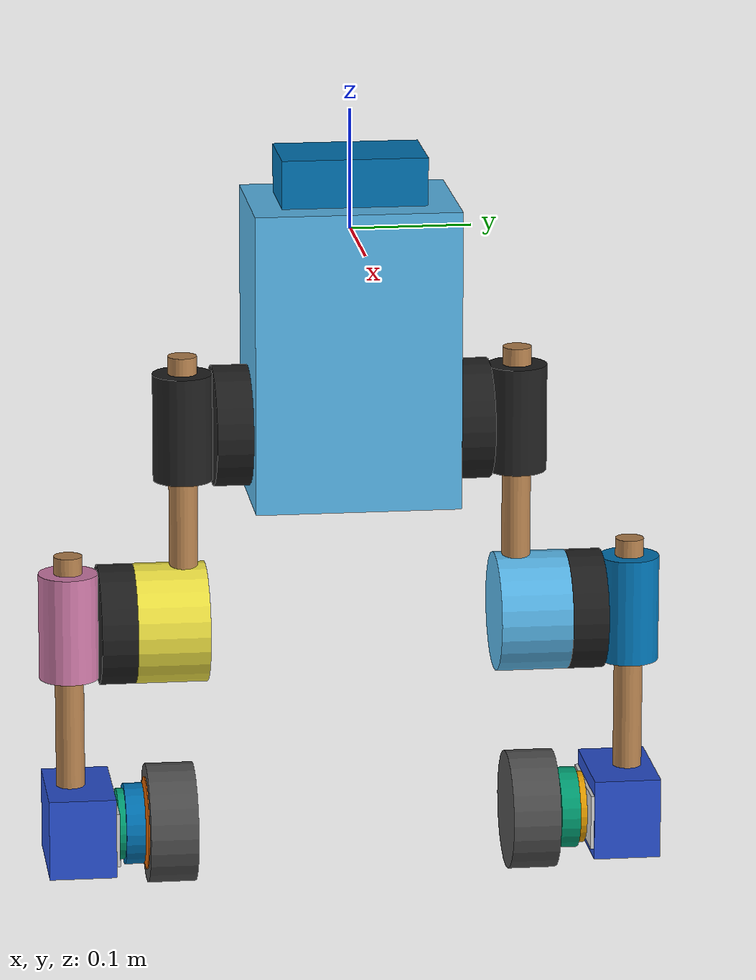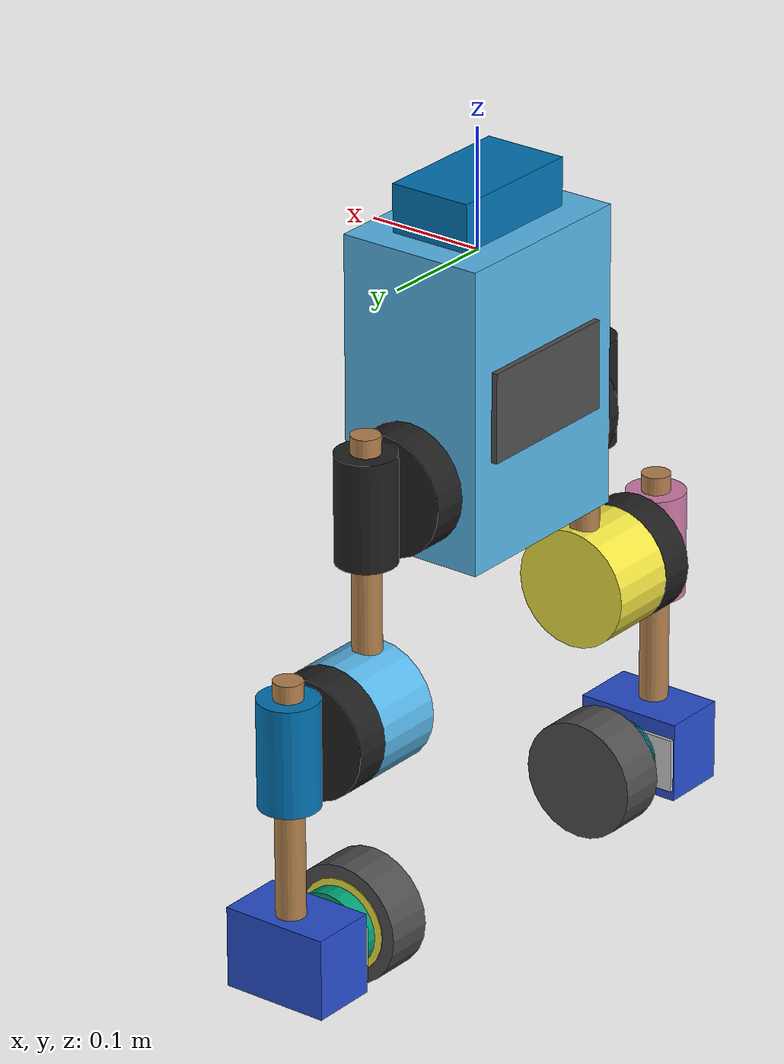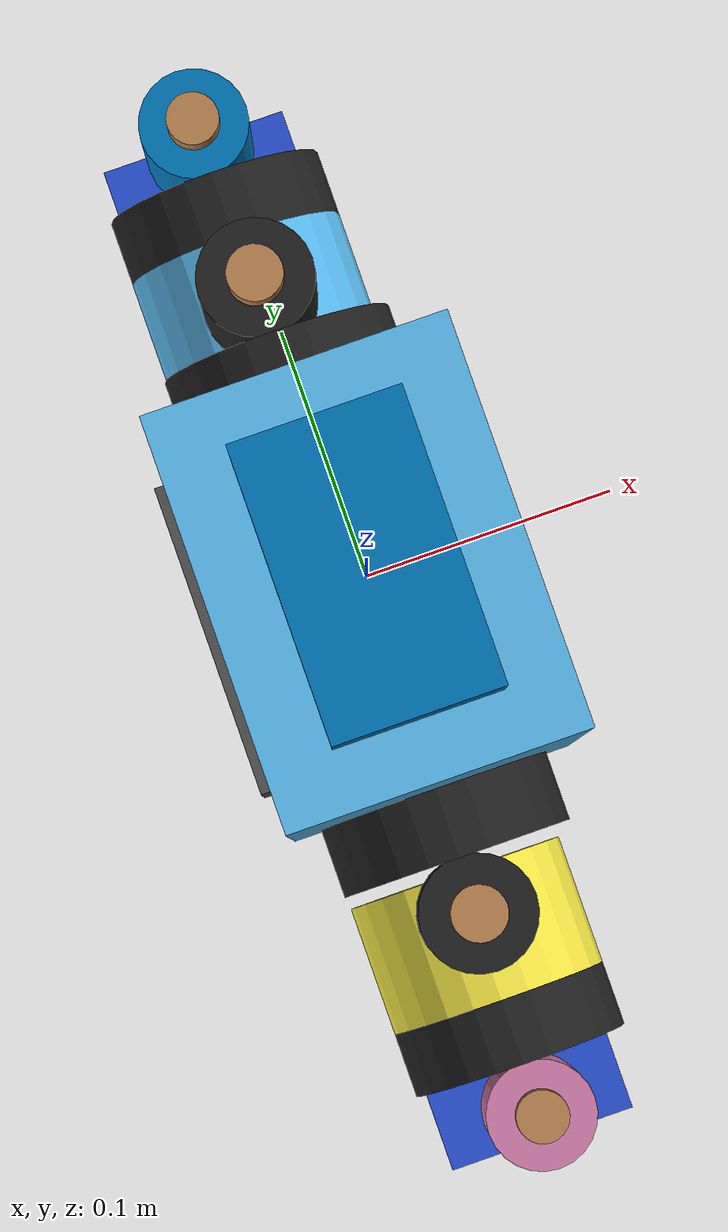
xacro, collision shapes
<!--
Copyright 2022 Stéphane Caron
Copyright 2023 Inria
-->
<?xml version="1.0" encoding="utf-8" ?>
<robot name="upkie" xmlns:xacro="http://ros.org/wiki/xacro">
    <xacro:include filename="xacro/utils/box_inertia.xacro" />
    <xacro:include filename="xacro/utils/cylinder_inertia.xacro" />
    <xacro:include filename="xacro/utils/materials.xacro" />
    <xacro:include filename="xacro/utils/virtual_link.xacro" />

    <xacro:include filename="xacro/left_leg.xacro" />
    <xacro:include filename="xacro/right_leg.xacro" />
    <xacro:include filename="xacro/torso.xacro" />

    <xacro:torso with_camera="false" with_handle="true" />
    <xacro:left_leg />
    <xacro:right_leg />
</robot>

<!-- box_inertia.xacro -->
<!-- SPDX-License-Identifier: Apache-2.0 -->
<robot name="utils" xmlns:xacro="http://ros.org/wiki/xacro">
    <xacro:macro name="box_inertia" params="len_x len_y len_z mass">
        <inertial>
            <mass value="${mass}"/>
            <inertia
                ixx="${mass * (len_y ** 2 + len_z ** 2) / 12}"
                ixy="0"
                ixz="0"
                iyy="${mass * (len_x ** 2 + len_z ** 2) / 12}"
                iyz="0"
                izz="${mass * (len_x ** 2 + len_y ** 2) / 12}"
                />
        </inertial>
    </xacro:macro>
</robot>

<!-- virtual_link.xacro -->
<!-- SPDX-License-Identifier: Apache-2.0 -->
<robot name="utils" xmlns:xacro="http://ros.org/wiki/xacro">
    <xacro:macro name="virtual_link" params="name">
        <link name="${name}">
            <!-- virtual link: https://github.com/upkie/upkie_description/wiki/Model-conventions#virtual-links -->
            <visual>
                <geometry>
                    <box size="0 0 0" />
                </geometry>
            </visual>
            <inertial>
                <mass value="0.001" />
                <origin rpy="0 0 0" xyz="0 0 0" />
                <inertia ixx="0" ixy="0" ixz="0" iyy="0" iyz="0" izz="0" />
            </inertial>
        </link>
    </xacro:macro>
</robot>

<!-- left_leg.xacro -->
<!-- SPDX-License-Identifier: Apache-2.0 -->
<robot name="upkie" xmlns:xacro="http://ros.org/wiki/xacro">
    <xacro:macro name="left_leg">
        <!-- Left leg -->

        <!-- Left hip -->

        <link name="left_hip_qdd100_stator">
            <visual>
                <geometry>
                    <mesh filename="package://upkie_description/meshes/mjbots/qdd100_stator.stl" />
                </geometry>
                <material name="black" />
            </visual>
            <collision>
                <origin rpy="0 0 0" xyz="0 0 0.015" />
                <geometry>
                    <cylinder length="0.03" radius="0.05" />
                </geometry>
            </collision>
            <!-- mass guessed from spec -->
            <xacro:cylinder_inertia
                rpy="0 0 0" xyz="0 0 0.015"
                mass="0.47"
                radius="0.05" length="0.03" />
        </link>

        <joint name="left_hip_qdd100_stator_fix" type="fixed">
            <origin rpy="-1.5707963267948966 0 0" xyz="0.0 0.085 -0.064" />
            <parent link="torso" />
            <child link="left_hip_qdd100_stator" />
        </joint>

        <link name="left_hip_qdd100_rotor">
            <visual>
                <geometry>
                    <mesh filename="package://upkie_description/meshes/mjbots/qdd100_rotor.stl" />
                </geometry>
                <material name="black" />
            </visual>
            <collision>
                <origin rpy="0 0 0" xyz="0 0 -0.0025" />
                <geometry>
                    <cylinder length="0.005" radius="0.023" />
                </geometry>
            </collision>
            <!-- mass guessed from spec -->
            <xacro:cylinder_inertia
                rpy="0 0 0" xyz="0 0 -0.0025"
                mass="0.015"
                radius="0.023" length="0.005" />
        </link>

        <joint name="left_hip" type="revolute">
            <parent link="left_hip_qdd100_stator" />
            <child link="left_hip_qdd100_rotor" />
            <origin rpy="0 0 0" xyz="0 0 0.0292" />
            <!-- negative z-axis: search "moteus-direction-configuration" -->
            <axis xyz="0 0 -1" />
            <limit effort="16.0" lower="-1.26" upper="1.26" velocity="28.8" />
        </joint>

        <link name="left_hip_horn">
            <visual>
                <geometry>
                    <mesh filename="package://upkie_description/meshes/mjbots/qdd100_horn.stl" />
                </geometry>
                <material name="black" />
            </visual>
            <collision>
                <origin rpy="0 1.5707963267948966 0" xyz="0 0 0.025" />
                <geometry>
                    <cylinder length="0.09" radius="0.025" />
                </geometry>
            </collision>
            <!-- mass measured with screws -->
            <xacro:cylinder_inertia
                rpy="0 1.5707963267948966 0" xyz="0 0 0.025"
                mass="0.05267"
                radius="0.025" length="0.09" />
        </link>

        <joint name="left_hip_horn_fix" type="fixed">
            <parent link="left_hip_qdd100_rotor" />
            <child link="left_hip_horn" />
            <origin rpy="0 0 1.5707963267948966" xyz="0 0 0" />
        </joint>

        <!-- Left femur -->

        <link name="left_femur">
            <visual>
                <geometry>
                    <cylinder length="0.25" radius="0.011" />
                </geometry>
                <material name="light_wood" />
            </visual>
            <collision>
                <geometry>
                    <cylinder length="0.26" radius="0.012" />
                </geometry>
                <material name="light_wood" />
            </collision>
            <!-- mass measured on average over four wooden sticks -->
            <xacro:cylinder_inertia
                rpy="0 0 0" xyz="0 0 0"
                mass="0.056"
                radius="0.012" length="0.026" />
        </link>

        <joint name="left_femur_fix" type="fixed">
            <parent link="left_hip_qdd100_rotor" />
            <child link="left_femur" />
            <origin rpy="1.5707963267948966 0 0" xyz="0 0.07 0.025" />
        </joint>

        <!-- Left knee -->

        <joint name="left_knee_stator_fix" type="fixed">
            <parent link="left_femur" />
            <child link="left_knee_stator" />
            <origin rpy="0 0 -1.5707963267948966" xyz="0 0.042 -0.098" />
        </joint>

        <link name="left_knee_stator">
            <visual>
                <geometry>
                    <mesh filename="package://upkie_description/meshes/knee_stator.stl" />
                </geometry>
                <material name="terracotta_light" />
            </visual>
            <collision>
                <origin rpy="0 1.5707963267948966 0" xyz="0.03 0 0" />
                <geometry>
                    <cylinder length="0.06" radius="0.05" />
                </geometry>
            </collision>
            <!-- mass based on filament estimate from Prusa Slicer -->
            <xacro:cylinder_inertia
                rpy="0 1.5707963267948966 0" xyz="0.03 0 0"
                mass="0.09874"
                radius="0.05" length="0.06" />
        </link>

        <link name="left_knee_qdd100_stator">
            <visual>
                <geometry>
                    <mesh filename="package://upkie_description/meshes/mjbots/qdd100_stator.stl" />
                </geometry>
                <material name="black" />
            </visual>
            <collision>
                <origin rpy="0 0 0" xyz="0 0 0.015" />
                <geometry>
                    <cylinder length="0.03" radius="0.05" />
                </geometry>
            </collision>
            <!-- mass guessed from spec -->
            <xacro:cylinder_inertia
                rpy="0 0 0" xyz="0 0 0.015"
                mass="0.47"
                radius="0.05" length="0.03" />
        </link>

        <joint name="left_knee_qdd100_stator_fix" type="fixed">
            <parent link="left_knee_stator" />
            <child link="left_knee_qdd100_stator" />
            <origin rpy="-1.5707963267948966 0 1.5707963267948966" xyz="0 0 0" />
        </joint>

        <joint name="left_knee" type="revolute">
            <parent link="left_knee_qdd100_stator" />
            <child link="left_knee_qdd100_rotor" />
            <origin rpy="0 0 0" xyz="0 0 0.0292" />
            <!-- negative z-axis: search "moteus-direction-configuration" -->
            <axis xyz="0 0 -1" />
            <limit effort="16.0" lower="-2.51" upper="2.51" velocity="28.8" />
        </joint>

        <link name="left_knee_qdd100_rotor">
            <visual>
                <geometry>
                    <mesh filename="package://upkie_description/meshes/mjbots/qdd100_rotor.stl" />
                </geometry>
                <material name="black" />
            </visual>
            <collision>
                <origin rpy="0 0 0" xyz="0 0 -0.0025" />
                <geometry>
                    <cylinder length="0.005" radius="0.023" />
                </geometry>
            </collision>
            <!-- mass guessed from spec -->
            <xacro:cylinder_inertia
                rpy="0 0 0" xyz="0 0 -0.0025"
                mass="0.015"
                radius="0.023" length="0.005" />
        </link>

        <link name="left_knee_horn">
            <visual>
                <geometry>
                    <mesh filename="package://upkie_description/meshes/mjbots/qdd100_horn.stl" />
                </geometry>
                <material name="terracotta_light" />
            </visual>
            <collision>
                <origin rpy="0 1.5707963267948966 0" xyz="0 0 0.025" />
                <geometry>
                    <cylinder length="0.09" radius="0.025" />
                </geometry>
            </collision>
            <!-- mass measured with screws -->
            <xacro:cylinder_inertia
                rpy="0 1.5707963267948966 0" xyz="0 0 0.025"
                mass="0.05267"
                radius="0.025" length="0.09" />
        </link>

        <joint name="left_knee_horn_fix" type="fixed">
            <parent link="left_knee_qdd100_rotor" />
            <child link="left_knee_horn" />
            <origin rpy="0 0 1.5707963267948966" xyz="0 0 0" />
        </joint>

        <!-- Left tibia -->

        <link name="left_tibia">
            <visual>
                <geometry>
                    <cylinder length="0.25" radius="0.011" />
                </geometry>
                <material name="light_wood" />
            </visual>
            <collision>
                <geometry>
                    <cylinder length="0.26" radius="0.012" />
                </geometry>
                <material name="light_wood" />
            </collision>
            <!-- mass measured on average over four wooden sticks -->
            <xacro:cylinder_inertia
                rpy="0 0 0" xyz="0 0 0"
                mass="0.056"
                radius="0.012" length="0.026" />
        </link>

        <joint name="left_tibia_fix" type="fixed">
            <parent link="left_knee_qdd100_rotor" />
            <child link="left_tibia" />
            <origin rpy="1.5707963267948966 3.141592653589793 0" xyz="0 0.07 0.025" />
        </joint>

        <!-- Left ankle -->

        <link name="left_ankle_base">
            <visual>
                <geometry>
                    <mesh filename="package://upkie_description/meshes/ankle_stator.stl" />
                </geometry>
                <material name="chalky_blue" />
            </visual>
            <collision>
                <origin rpy="0 0 0" xyz="0 0.002 0.0275" />
                <geometry>
                    <box size="0.092 0.068 0.056" />
                </geometry>
            </collision>
            <!-- mass measured with screws -->
            <xacro:box_inertia
                rpy="0 0 0" xyz="0 0.002 0.0275"
                mass="0.07863"
                len_x="0.092" len_y="0.068" len_z="0.056" />
        </link>

        <joint name="left_ankle_base_fix" type="fixed">
            <parent link="left_tibia" />
            <child link="left_ankle_base" />
            <origin rpy="1.5707963267948966 0 0" xyz="0 0.034 -0.105" />
        </joint>

        <link name="left_ankle_plate">
            <visual>
                <geometry>
                    <box size="0.08 0.045 0.003" />
                </geometry>
                <material name="light_gray" />
            </visual>
            <collision>
                <geometry>
                    <box size="0.09 0.046 0.004" />
                </geometry>
            </collision>
            <!-- mass is a pure guess (^_^") -->
            <xacro:box_inertia
                rpy="0 0 0" xyz="0 0 0"
                mass="0.02"
                len_x="0.09" len_y="0.046" len_z="0.004" />
        </link>

        <joint name="left_ankle_plate_fix" type="fixed">
            <parent link="left_ankle_base" />
            <child link="left_ankle_plate" />
            <origin rpy="0 0 0" xyz="0 0 -0.0015" />
        </joint>

        <link name="left_ankle_mj5208_stator">
            <visual>
                <geometry>
                    <mesh filename="package://upkie_description/meshes/mjbots/mj5208_stator.stl" />
                </geometry>
                <material name="mj5208_stator" />
            </visual>
            <collision>
                <origin rpy="0 0 0" xyz="0 0 0.01" />
                <geometry>
                    <cylinder length="0.018" radius="0.03" />
                </geometry>
            </collision>
            <!-- mass measured was 242.1 [g], minus 20 [g] for the plate, minus 50 [g] for the rotor -->
            <xacro:cylinder_inertia
                rpy="0 0 0" xyz="0 0 0.01"
                mass="0.1721"
                radius="0.03" length="0.018" />
        </link>

        <joint name="left_ankle_mj5208_stator_fix" type="fixed">
            <parent link="left_ankle_plate" />
            <child link="left_ankle_mj5208_stator" />
            <origin rpy="3.141592653589793 0 0" xyz="0 0 -0.0015" />
        </joint>

        <link name="left_anchor">
            <xacro:virtual_link_inertia />
        </link>

        <joint name="left_anchor_fix" type="fixed">
            <parent link="left_ankle_mj5208_stator" />
            <child link="left_anchor" />
            <origin rpy="1.5707963267948966 3.141592653589793 0" xyz="0 0.0545 0.05" />
        </joint>

        <link name="left_ankle_mj5208_rotor">
            <visual>
                <geometry>
                    <mesh filename="package://upkie_description/meshes/mjbots/mj5208_rotor.stl" />
                </geometry>
                <material name="mj5208_rotor" />
            </visual>
            <collision>
                <origin rpy="0 0 0" xyz="0 0 0.015" />
                <geometry>
                    <cylinder length="0.016" radius="0.034" />
                </geometry>
            </collision>
            <!-- mass is a pure guess -->
            <xacro:cylinder_inertia
                rpy="0 0 0" xyz="0 0 0.015"
                mass="0.05"
                radius="0.034" length="0.016" />
        </link>

        <joint name="left_wheel" type="revolute">
            <parent link="left_ankle_mj5208_stator" />
            <child link="left_ankle_mj5208_rotor" />
            <origin rpy="0 0 0" xyz="0 0 0" />
            <!-- negative z-axis: search "moteus-direction-configuration" -->
            <axis xyz="0 0 -1" />
            <limit effort="1.7" velocity="111.0" />
        </joint>

        <!-- Left wheel -->

        <link name="left_wheel_hub">
            <visual>
                <geometry>
                    <mesh filename="package://upkie_description/meshes/wheel_hub.stl" />
                </geometry>
                <material name="terracotta_light" />
            </visual>
            <collision>
                <origin rpy="0 0 0" xyz="0 0 0.0125" />
                <geometry>
                    <cylinder length="0.025" radius="0.039" />
                </geometry>
            </collision>
            <!-- mass measured with hub adapter -->
            <xacro:cylinder_inertia
                rpy="0 0 0" xyz="0 0 0.0125"
                mass="0.0454"
                radius="0.039" length="0.025" />
        </link>

        <joint name="left_wheel_hub_fix" type="fixed">
            <parent link="left_ankle_mj5208_rotor" />
            <child link="left_wheel_hub" />
            <origin rpy="0 0 0" xyz="0 0 0.0251" />
        </joint>

        <link name="left_wheel_tire">
            <visual>
                <geometry>
                    <mesh filename="package://upkie_description/meshes/wheel_tire/wheel_tire.stl" />
                </geometry>
                <material name="dark_gray" />
            </visual>
            <collision>
                <geometry>
                    <cylinder length="0.04" radius="0.05" />
                </geometry>
            </collision>
            <!-- mass measured on a real robot -->
            <xacro:cylinder_inertia
                rpy="0 0 0" xyz="0 0 0"
                mass="0.08715"
                radius="0.05" length="0.04" />
            <contact>
                <lateral_friction value="1.0" />
                <rolling_friction value="0.01" />
                <stiffness value="30000" />
                <damping value="1000" />
            </contact>
        </link>

        <joint name="left_wheel_fix" type="fixed">
            <parent link="left_wheel_hub" />
            <child link="left_wheel_tire" />
            <origin rpy="0 0 0" xyz="0 0 0.0209" />
        </joint>

        <link name="left_contact">
            <xacro:virtual_link_inertia />
        </link>

        <joint name="left_contact_fix" type="fixed">
            <parent link="left_wheel_tire" />
            <child link="left_contact" />
            <!-- contact target is a bit inside to avoid collisions with its box -->
            <!-- tangent contact surface would be xyz="0 0.05 0" -->
            <origin rpy="1.5707963267948966 0 0" xyz="0 0.047 0" />
        </joint>

        <link name="left_wheel_center">
            <xacro:virtual_link_inertia />
        </link>

        <joint name="left_wheel_center_fix" type="fixed">
            <parent link="left_wheel_tire" />
            <child link="left_wheel_center" />
            <origin rpy="1.5707963267948966 3.141592653589793 0" xyz="0 0 0" />
        </joint>
    </xacro:macro>
</robot>

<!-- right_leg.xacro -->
<!-- SPDX-License-Identifier: Apache-2.0 -->
<robot name="upkie" xmlns:xacro="http://ros.org/wiki/xacro">
    <xacro:macro name="right_leg">
        <!-- Right leg -->

        <!-- Right hip -->

        <link name="right_hip_qdd100_stator">
            <visual>
                <geometry>
                    <mesh filename="package://upkie_description/meshes/mjbots/qdd100_stator.stl" />
                </geometry>
                <material name="black" />
            </visual>
            <collision>
                <origin rpy="0 0 0" xyz="0 0 0.015" />
                <geometry>
                    <cylinder length="0.03" radius="0.05" />
                </geometry>
            </collision>
            <!-- mass guessed from spec -->
            <xacro:cylinder_inertia
                rpy="0 0 0" xyz="0 0 0.015"
                mass="0.47"
                radius="0.05" length="0.03" />
        </link>

        <joint name="right_hip_qdd100_stator_fix" type="fixed">
            <origin rpy="1.5707963267948966 3.141592653589793 0" xyz="0.0 -0.085 -0.064" />
            <parent link="torso" />
            <child link="right_hip_qdd100_stator" />
        </joint>

        <link name="right_hip_qdd100_rotor">
            <visual>
                <geometry>
                    <mesh filename="package://upkie_description/meshes/mjbots/qdd100_rotor.stl" />
                </geometry>
                <material name="black" />
            </visual>
            <collision>
                <origin rpy="0 0 0" xyz="0 0 -0.0025" />
                <geometry>
                    <cylinder length="0.005" radius="0.023" />
                </geometry>
            </collision>
            <!-- mass guessed from spec -->
            <xacro:cylinder_inertia
                rpy="0 0 0" xyz="0 0 -0.0025"
                mass="0.015"
                radius="0.023" length="0.005" />
        </link>

        <joint name="right_hip" type="revolute">
            <parent link="right_hip_qdd100_stator" />
            <child link="right_hip_qdd100_rotor" />
            <origin rpy="0 0 0" xyz="0 0 0.0292" />
            <!-- negative z-axis: search "moteus-direction-configuration" -->
            <axis xyz="0 0 -1" />
            <limit effort="16.0" lower="-1.26" upper="1.26" velocity="28.8" />
        </joint>

        <link name="right_hip_horn">
            <visual>
                <geometry>
                    <mesh filename="package://upkie_description/meshes/mjbots/qdd100_horn.stl" />
                </geometry>
                <material name="black" />
            </visual>
            <collision>
                <origin rpy="0 1.5707963267948966 0" xyz="0 0 0.025" />
                <geometry>
                    <cylinder length="0.09" radius="0.025" />
                </geometry>
            </collision>
            <!-- mass measured with screws -->
            <xacro:cylinder_inertia
                rpy="0 1.5707963267948966 0" xyz="0 0 0.025"
                mass="0.05267"
                radius="0.025" length="0.09" />
        </link>

        <joint name="right_hip_horn_fix" type="fixed">
            <parent link="right_hip_qdd100_rotor" />
            <child link="right_hip_horn" />
            <origin rpy="0 0 1.5707963267948966" xyz="0 0 0" />
        </joint>

        <!-- Right femur -->

        <link name="right_femur">
            <visual>
                <geometry>
                    <cylinder length="0.25" radius="0.011" />
                </geometry>
                <material name="light_wood" />
            </visual>
            <collision>
                <geometry>
                    <cylinder length="0.26" radius="0.012" />
                </geometry>
                <material name="light_wood" />
            </collision>
            <!-- mass measured on average over four wooden sticks -->
            <xacro:cylinder_inertia
                rpy="0 0 0" xyz="0 0 0"
                mass="0.056"
                radius="0.012" length="0.026" />
        </link>

        <joint name="right_femur_fix" type="fixed">
            <parent link="right_hip_qdd100_rotor" />
            <child link="right_femur" />
            <origin rpy="1.5707963267948966 0 0" xyz="0 0.07 0.025" />
        </joint>

        <!-- Right knee -->

        <joint name="right_knee_stator_fix" type="fixed">
            <parent link="right_femur" />
            <child link="right_knee_stator" />
            <origin rpy="0 0 -1.5707963267948966" xyz="0 0.042 -0.098" />
        </joint>

        <link name="right_knee_stator">
            <visual>
                <geometry>
                    <mesh filename="package://upkie_description/meshes/knee_stator.stl" />
                </geometry>
                <material name="terracotta_light" />
            </visual>
            <collision>
                <origin rpy="0 1.5707963267948966 0" xyz="0.03 0 0" />
                <geometry>
                    <cylinder length="0.06" radius="0.05" />
                </geometry>
            </collision>
            <!-- mass based on filament estimate from Prusa Slicer -->
            <xacro:cylinder_inertia
                rpy="0 1.5707963267948966 0" xyz="0.03 0 0"
                mass="0.09874"
                radius="0.05" length="0.06" />
        </link>

        <link name="right_knee_qdd100_stator">
            <visual>
                <geometry>
                    <mesh filename="package://upkie_description/meshes/mjbots/qdd100_stator.stl" />
                </geometry>
                <material name="black" />
            </visual>
            <collision>
                <origin rpy="0 0 0" xyz="0 0 0.015" />
                <geometry>
                    <cylinder length="0.03" radius="0.05" />
                </geometry>
            </collision>
            <!-- mass guessed from spec -->
            <xacro:cylinder_inertia
                rpy="0 0 0" xyz="0 0 0.015"
                mass="0.47"
                radius="0.05" length="0.03" />
        </link>

        <joint name="right_knee_qdd100_stator_fix" type="fixed">
            <parent link="right_knee_stator" />
            <child link="right_knee_qdd100_stator" />
            <origin rpy="-1.5707963267948966 0 1.5707963267948966" xyz="0 0 0" />
        </joint>

        <joint name="right_knee" type="revolute">
            <parent link="right_knee_qdd100_stator" />
            <child link="right_knee_qdd100_rotor" />
            <origin rpy="0 0 0" xyz="0 0 0.0292" />
            <!-- negative z-axis: search "moteus-direction-configuration" -->
            <axis xyz="0 0 -1" />
            <limit effort="16.0" lower="-2.51" upper="2.51" velocity="28.8" />
        </joint>

        <link name="right_knee_qdd100_rotor">
            <visual>
                <geometry>
                    <mesh filename="package://upkie_description/meshes/mjbots/qdd100_rotor.stl" />
                </geometry>
                <material name="black" />
            </visual>
            <collision>
                <origin rpy="0 0 0" xyz="0 0 -0.0025" />
                <geometry>
                    <cylinder length="0.005" radius="0.023" />
                </geometry>
            </collision>
            <!-- mass guessed from spec -->
            <xacro:cylinder_inertia
                rpy="0 0 0" xyz="0 0 -0.0025"
                mass="0.015"
                radius="0.023" length="0.005" />
        </link>

        <link name="right_knee_horn">
            <visual>
                <geometry>
                    <mesh filename="package://upkie_description/meshes/mjbots/qdd100_horn.stl" />
                </geometry>
                <material name="terracotta_light" />
            </visual>
            <collision>
                <origin rpy="0 1.5707963267948966 0" xyz="0 0 0.025" />
                <geometry>
                    <cylinder length="0.09" radius="0.025" />
                </geometry>
            </collision>
            <!-- mass measured with screws -->
            <xacro:cylinder_inertia
                rpy="0 1.5707963267948966 0" xyz="0 0 0.025"
                mass="0.05267"
                radius="0.025" length="0.09" />
        </link>

        <joint name="right_knee_horn_fix" type="fixed">
            <parent link="right_knee_qdd100_rotor" />
            <child link="right_knee_horn" />
            <origin rpy="0 0 1.5707963267948966" xyz="0 0 0" />
        </joint>

        <!-- Right tibia -->

        <link name="right_tibia">
            <visual>
                <geometry>
                    <cylinder length="0.25" radius="0.011" />
                </geometry>
                <material name="light_wood" />
            </visual>
            <collision>
                <geometry>
                    <cylinder length="0.26" radius="0.012" />
                </geometry>
                <material name="light_wood" />
            </collision>
            <!-- mass measured on average over four wooden sticks -->
            <xacro:cylinder_inertia
                rpy="0 0 0" xyz="0 0 0"
                mass="0.056"
                radius="0.012" length="0.026" />
        </link>

        <joint name="right_tibia_fix" type="fixed">
            <parent link="right_knee_qdd100_rotor" />
            <child link="right_tibia" />
            <origin rpy="1.5707963267948966 3.141592653589793 0" xyz="0 0.07 0.025" />
        </joint>

        <!-- Right ankle -->

        <link name="right_ankle_base">
            <visual>
                <geometry>
                    <mesh filename="package://upkie_description/meshes/ankle_stator.stl" />
                </geometry>
                <material name="chalky_blue" />
            </visual>
            <collision>
                <origin rpy="0 0 0" xyz="0 0.002 0.0275" />
                <geometry>
                    <box size="0.092 0.068 0.056" />
                </geometry>
            </collision>
            <!-- mass measured with screws -->
            <xacro:box_inertia
                rpy="0 0 0" xyz="0 0.002 0.0275"
                mass="0.07863"
                len_x="0.092" len_y="0.068" len_z="0.056" />
        </link>

        <joint name="right_ankle_base_fix" type="fixed">
            <parent link="right_tibia" />
            <child link="right_ankle_base" />
            <origin rpy="1.5707963267948966 0 0" xyz="0 0.034 -0.105" />
        </joint>

        <link name="right_ankle_plate">
            <visual>
                <geometry>
                    <box size="0.08 0.045 0.003" />
                </geometry>
                <material name="light_gray" />
            </visual>
            <collision>
                <geometry>
                    <box size="0.09 0.046 0.004" />
                </geometry>
            </collision>
            <!-- mass is a pure guess (^_^") -->
            <xacro:box_inertia
                rpy="0 0 0" xyz="0 0 0"
                mass="0.02"
                len_x="0.09" len_y="0.046" len_z="0.004" />
        </link>

        <joint name="right_ankle_plate_fix" type="fixed">
            <parent link="right_ankle_base" />
            <child link="right_ankle_plate" />
            <origin rpy="0 0 0" xyz="0 0 -0.0015" />
        </joint>

        <link name="right_ankle_mj5208_stator">
            <visual>
                <geometry>
                    <mesh filename="package://upkie_description/meshes/mjbots/mj5208_stator.stl" />
                </geometry>
                <material name="mj5208_stator" />
            </visual>
            <collision>
                <origin rpy="0 0 0" xyz="0 0 0.01" />
                <geometry>
                    <cylinder length="0.018" radius="0.03" />
                </geometry>
            </collision>
            <!-- mass measured was 242.1 [g], minus 20 [g] for the plate, minus 50 [g] for the rotor -->
            <xacro:cylinder_inertia
                rpy="0 0 0" xyz="0 0 0.01"
                mass="0.1721"
                radius="0.03" length="0.018" />
        </link>

        <joint name="right_ankle_mj5208_stator_fix" type="fixed">
            <parent link="right_ankle_plate" />
            <child link="right_ankle_mj5208_stator" />
            <origin rpy="3.141592653589793 0 0" xyz="0 0 -0.0015" />
        </joint>

        <link name="right_anchor">
            <xacro:virtual_link_inertia />
        </link>

        <joint name="right_anchor_fix" type="fixed">
            <parent link="right_ankle_mj5208_stator" />
            <child link="right_anchor" />
            <origin rpy="1.5707963267948966 0 0" xyz="0 0.0545 0.048" />
        </joint>

        <link name="right_ankle_mj5208_rotor">
            <visual>
                <geometry>
                    <mesh filename="package://upkie_description/meshes/mjbots/mj5208_rotor.stl" />
                </geometry>
                <material name="mj5208_rotor" />
            </visual>
            <collision>
                <origin rpy="0 0 0" xyz="0 0 0.015" />
                <geometry>
                    <cylinder length="0.016" radius="0.034" />
                </geometry>
            </collision>
            <!-- mass is a pure guess -->
            <xacro:cylinder_inertia
                rpy="0 0 0" xyz="0 0 0.015"
                mass="0.05"
                radius="0.034" length="0.016" />
        </link>

        <joint name="right_wheel" type="revolute">
            <parent link="right_ankle_mj5208_stator" />
            <child link="right_ankle_mj5208_rotor" />
            <origin rpy="0 0 0" xyz="0 0 0" />
            <!-- negative z-axis: search "moteus-direction-configuration" -->
            <axis xyz="0 0 -1" />
            <limit effort="1.7" velocity="111.0" />
        </joint>

        <!-- Right wheel -->

        <link name="right_wheel_hub">
            <visual>
                <geometry>
                    <mesh filename="package://upkie_description/meshes/wheel_hub.stl" />
                </geometry>
                <material name="terracotta_light" />
            </visual>
            <collision>
                <origin rpy="0 0 0" xyz="0 0 0.0125" />
                <geometry>
                    <cylinder length="0.025" radius="0.039" />
                </geometry>
            </collision>
            <!-- mass measured with hub adapter -->
            <xacro:cylinder_inertia
                rpy="0 0 0" xyz="0 0 0.0125"
                mass="0.0454"
                radius="0.039" length="0.025" />
        </link>

        <joint name="right_wheel_hub_fix" type="fixed">
            <parent link="right_ankle_mj5208_rotor" />
            <child link="right_wheel_hub" />
            <origin rpy="0 0 0" xyz="0 0 0.0251" />
        </joint>

        <link name="right_wheel_tire">
            <visual>
                <geometry>
                    <mesh filename="package://upkie_description/meshes/wheel_tire/wheel_tire.stl" />
                </geometry>
                <material name="dark_gray" />
            </visual>
            <collision>
                <geometry>
                    <cylinder length="0.04" radius="0.05" />
                </geometry>
            </collision>
            <!-- mass measured on a real tire -->
            <xacro:cylinder_inertia
                rpy="0 0 0" xyz="0 0 0"
                mass="0.08715"
                radius="0.05" length="0.04" />
            <contact>
                <lateral_friction value="1.0" />
                <rolling_friction value="0.01" />
                <stiffness value="30000" />
                <damping value="1000" />
            </contact>
        </link>

        <joint name="right_wheel_fix" type="fixed">
            <parent link="right_wheel_hub" />
            <child link="right_wheel_tire" />
            <origin rpy="0 0 0" xyz="0 0 0.0209" />
        </joint>

        <link name="right_contact">
            <xacro:virtual_link_inertia />
        </link>

        <joint name="right_contact_fix" type="fixed">
            <parent link="right_wheel_tire" />
            <child link="right_contact" />
            <!-- contact target is a bit inside to avoid collisions with its box -->
            <!-- tangent contact surface would be xyz="0 0.05 0" -->
            <origin rpy="1.5707963267948966 0 0" xyz="0 0.047 0" />
        </joint>

        <link name="right_wheel_center">
            <xacro:virtual_link_inertia />
        </link>

        <joint name="right_wheel_center_fix" type="fixed">
            <parent link="right_wheel_tire" />
            <child link="right_wheel_center" />
            <origin rpy="1.5707963267948966 3.141592653589793 0" xyz="0 0 0" />
        </joint>
    </xacro:macro>
</robot>

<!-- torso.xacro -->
<!-- SPDX-License-Identifier: Apache-2.0 -->
<robot name="upkie" xmlns:xacro="http://ros.org/wiki/xacro">
    <xacro:macro name="torso" params="with_camera with_handle">
        <xacro:virtual_link name="base" />

        <!-- Torso -->

        <link name="torso">
            <visual>
                <geometry>
                    <box size="0.125 0.17 0.25" />
                </geometry>
                <material name="terracotta_transparent" />
            </visual>
            <collision>
                <geometry>
                    <box size="0.125 0.17 0.25" />
                </geometry>
            </collision>
            <!-- torso mass evaluated as net mass (5.4 [kg]) minus everything else -->
            <xacro:box_inertia
                rpy="0 0 0" xyz="0 0 0"
                mass="1"
                len_x="0.125" len_y="0.17" len_z="0.25" />
        </link>

        <joint name="torso_fix" type="fixed">
            <origin rpy="0 0 0" xyz="0 0 -0.1" />
            <parent link="base" />
            <child link="torso" />
        </joint>

        <!-- IMU -->

        <xacro:virtual_link name="imu" />

        <joint name="imu_fix" type="fixed">
            <!-- not that the origin frame is not translated -->
            <origin rpy="3.141592653589793 0 3.141592653589793" xyz="0 0 0" />
            <parent link="torso" />
            <child link="imu" />
        </joint>

        <!-- Battery -->

        <link name="battery">
            <visual>
                <geometry>
                    <box size="0.13 0.074 0.055" />
                </geometry>
                <material name="dark_gray" />
            </visual>
            <collision>
                <geometry>
                    <box size="0.13 0.074 0.055" />
                </geometry>
            </collision>
            <!-- mass measurement was imprecise -->
            <xacro:box_inertia
                rpy="0 0 0" xyz="0 0 0"
                mass="0.8"
                len_x="0.13" len_y="0.074" len_z="0.055" />
        </link>

        <joint name="battery_fix" type="fixed">
            <origin rpy="1.5707963267948966 0 1.5707963267948966" xyz="-0.04 0 0" />
            <parent link="torso" />
            <child link="battery" />
        </joint>

        <xacro:if value="${with_camera}">
            <!-- Camera -->

            <link name="camera_support">
                <visual>
                    <geometry>
                        <mesh filename="package://upkie_description/meshes/add-ons/camera_support.stl" />
                    </geometry>
                    <material name="terracotta_light" />
                </visual>
                <collision>
                    <origin rpy="0 0 0" xyz="0 0 0" />
                    <geometry>
                        <box size="0.11 0.12 0.07" />
                    </geometry>
                </collision>
                <!-- mass measured with USB cable -->
                <xacro:box_inertia
                    rpy="0 0 0" xyz="0 0 0"
                    mass="0.167"
                    len_x="0.120" len_y="0.07" len_z="0.04" />
            </link>

            <joint name="camera_support_fix" type="fixed">
                <origin rpy="0 0 0" xyz="0 0 0.16" />
                <parent link="torso" />
                <child link="camera_support" />
            </joint>

            <link name="camera">
	    <visual>
	      <geometry>
		<box size="0.0175 0.091 0.028"/>
	      </geometry>
	      <material name="black"/>
	    </visual>
	    <collision>
	      <origin rpy="0 0 0" xyz="0 0 0"/>
	      <geometry>
		<box size="0.0175 0.091 0.028"/>
	      </geometry>
	    </collision>
	      <xacro:box_inertia
                    rpy="0 0 0" xyz="0 0 0"
                    mass="0.061"
                    len_x="0.0175" len_y="0.091" len_z="0.028" />
            </link>
	    <joint name="camera_fix" type="fixed">
	        <origin rpy="0 0 0" xyz="0.045 0 0"/>
	        <parent link="camera_support"/>
	        <child link="camera"/>
	    </joint>
	    <link name="camera_eye">
	        <xacro:virtual_link_inertia />
	    <visual>
	      <geometry>
	        <box size="0 0 0"/>
	      </geometry>
	      <material name="black"/>
	    </visual>
	  </link>
	  <joint name="camera_eye_fix" type="fixed">
	    <origin rpy="0 0 0" xyz="0.00875 0 0.005"/>
	    <parent link="camera"/>
	    <child link="camera_eye"/>
	  </joint>
        </xacro:if>

        <xacro:if value="${with_handle}">
            <!-- Handle -->

            <link name="handle">
                <visual>
                    <geometry>
                        <mesh filename="package://upkie_description/meshes/add-ons/handle.stl" />
                    </geometry>
                    <material name="terracotta_light" />
                </visual>
                <collision>
                    <origin rpy="0 0 0" xyz="0 0 0.01" />
                    <geometry>
                        <box size="0.120 0.07 0.04" />
                    </geometry>
                </collision>
                <!-- mass measured on a real robot -->
                <xacro:box_inertia
                    rpy="0 0 0" xyz="0 0 0.01"
                    mass="0.0525"
                    len_x="0.120" len_y="0.07" len_z="0.04" />
            </link>

            <joint name="handle_fix" type="fixed">
                <origin rpy="0 0 -1.5707963267948966" xyz="0 0 0.135" />
                <parent link="torso" />
                <child link="handle" />
            </joint>
        </xacro:if>
    </xacro:macro>
</robot>
